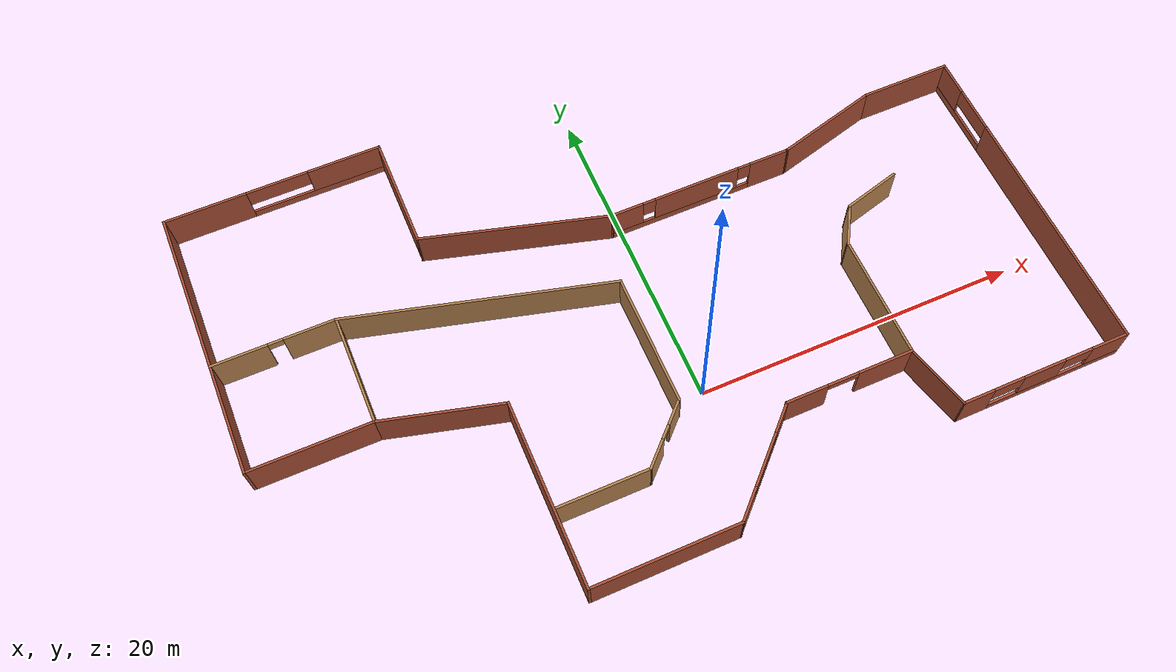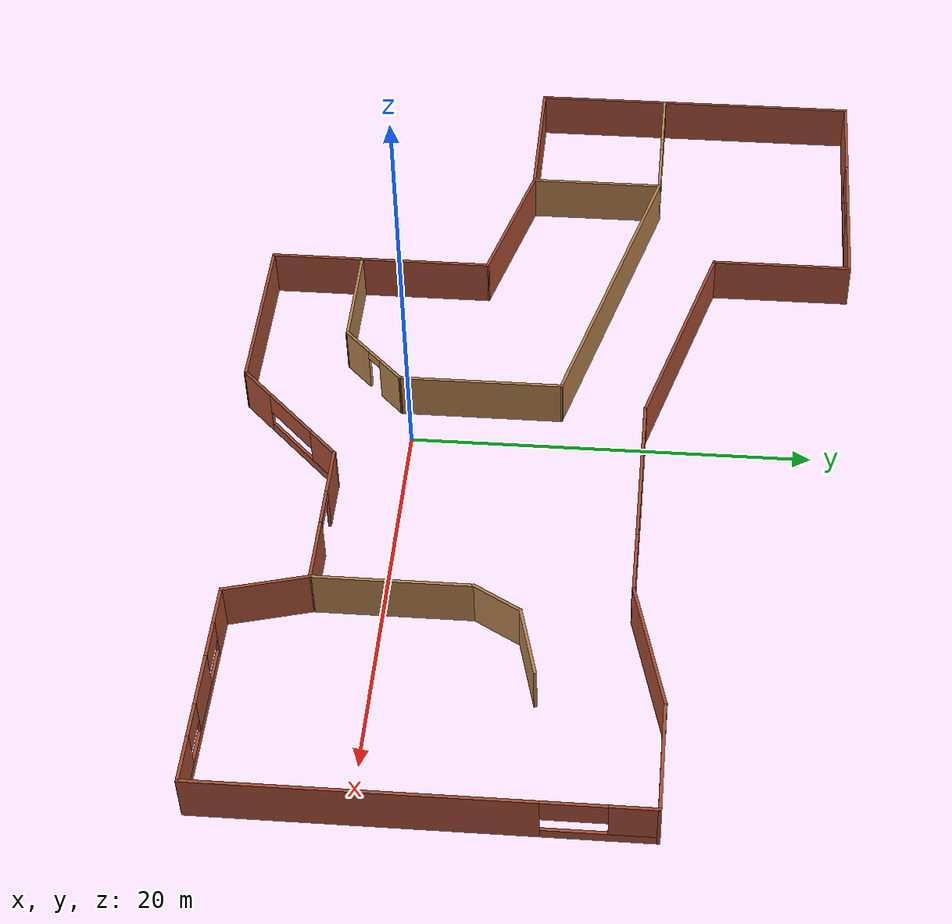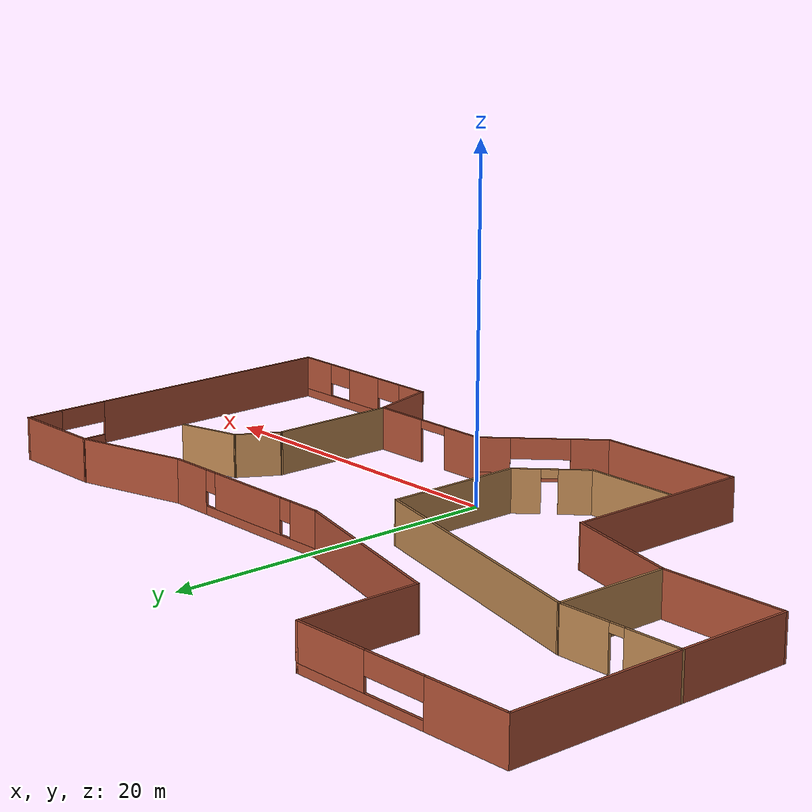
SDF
<?xml version='1.0'?>
<sdf version='1.6'>
  <model name='apartment_1'>
    <pose frame=''>-1.007 6.69548 0 0 -0 0</pose>
    <link name='Wall_0'>
      <collision name='Wall_0_Collision'>
        <geometry>
          <box>
            <size>11.5 0.15 2.5</size>
          </box>
        </geometry>
        <pose frame=''>0 0 1.25 0 -0 0</pose>
      </collision>
      <visual name='Wall_0_Visual'>
        <pose frame=''>0 0 1.25 0 -0 0</pose>
        <geometry>
          <box>
            <size>11.5 0.15 2.5</size>
          </box>
        </geometry>
        <material>
          <script>
            <uri>file://media/materials/scripts/gazebo.material</uri>
            <name>Gazebo/Bricks</name>
          </script>
          <ambient>1 1 1 1</ambient>
        </material>
        <meta>
          <layer>0</layer>
        </meta>
      </visual>
      <pose frame=''>-9.55442 -9.48563 0 0 -0 -1.5708</pose>
    </link>
    <link name='Wall_1'>
      <collision name='Wall_1_Collision'>
        <geometry>
          <box>
            <size>9 0.15 2.5</size>
          </box>
        </geometry>
        <pose frame=''>0 0 1.25 0 -0 0</pose>
      </collision>
      <visual name='Wall_1_Visual'>
        <pose frame=''>0 0 1.25 0 -0 0</pose>
        <geometry>
          <box>
            <size>9 0.15 2.5</size>
          </box>
        </geometry>
        <material>
          <script>
            <uri>file://media/materials/scripts/gazebo.material</uri>
            <name>Gazebo/Bricks</name>
          </script>
          <ambient>1 1 1 1</ambient>
        </material>
        <meta>
          <layer>0</layer>
        </meta>
      </visual>
      <pose frame=''>-5.12942 -15.1606 0 0 -0 0</pose>
    </link>
    <link name='Wall_15'>
      <collision name='Wall_15_Collision'>
        <geometry>
          <box>
            <size>7.5 0.15 2.5</size>
          </box>
        </geometry>
        <pose frame=''>0 0 1.25 0 -0 0</pose>
      </collision>
      <visual name='Wall_15_Visual'>
        <pose frame=''>0 0 1.25 0 -0 0</pose>
        <geometry>
          <box>
            <size>7.5 0.15 2.5</size>
          </box>
        </geometry>
        <material>
          <script>
            <uri>file://media/materials/scripts/gazebo.material</uri>
            <name>Gazebo/Bricks</name>
          </script>
          <ambient>1 1 1 1</ambient>
        </material>
        <meta>
          <layer>0</layer>
        </meta>
      </visual>
      <pose frame=''>-13.1042 -2.85947 0 0 -0 2.87979</pose>
    </link>
    <link name='Wall_16'>
      <collision name='Wall_16_Collision'>
        <geometry>
          <box>
            <size>7.5 0.15 2.5</size>
          </box>
        </geometry>
        <pose frame=''>0 0 1.25 0 -0 0</pose>
      </collision>
      <visual name='Wall_16_Visual'>
        <pose frame=''>0 0 1.25 0 -0 0</pose>
        <geometry>
          <box>
            <size>7.5 0.15 2.5</size>
          </box>
        </geometry>
        <material>
          <script>
            <uri>file://media/materials/scripts/gazebo.material</uri>
            <name>Gazebo/Bricks</name>
          </script>
          <ambient>1 1 1 1</ambient>
        </material>
        <meta>
          <layer>0</layer>
        </meta>
      </visual>
      <pose frame=''>-20.329 -1.90831 0 0 -0 3.14159</pose>
    </link>
    <link name='Wall_17'>
      <collision name='Wall_17_Collision'>
        <geometry>
          <box>
            <size>17.25 0.15 2.5</size>
          </box>
        </geometry>
        <pose frame=''>0 0 1.25 0 -0 0</pose>
      </collision>
      <visual name='Wall_17_Visual'>
        <pose frame=''>0 0 1.25 0 -0 0</pose>
        <geometry>
          <box>
            <size>17.25 0.15 2.5</size>
          </box>
        </geometry>
        <material>
          <script>
            <uri>file://media/materials/scripts/gazebo.material</uri>
            <name>Gazebo/Bricks</name>
          </script>
          <ambient>1 1 1 1</ambient>
        </material>
        <meta>
          <layer>0</layer>
        </meta>
      </visual>
      <pose frame=''>-24.004 6.64169 0 0 -0 1.5708</pose>
    </link>
    <link name='Wall_18'>
      <pose frame=''>-17.329 15.1917 0 0 -0 0</pose>
      <visual name='Wall_18_Visual_0'>
        <pose frame=''>-4.20454 0 1.25 0 -0 0</pose>
        <geometry>
          <box>
            <size>5.09092 0.15 2.5</size>
          </box>
        </geometry>
        <material>
          <script>
            <uri>file://media/materials/scripts/gazebo.material</uri>
            <name>Gazebo/Bricks</name>
          </script>
          <ambient>1 1 1 1</ambient>
        </material>
        <meta>
          <layer>0</layer>
        </meta>
      </visual>
      <collision name='Wall_18_Collision_0'>
        <geometry>
          <box>
            <size>5.09092 0.15 2.5</size>
          </box>
        </geometry>
        <pose frame=''>-4.20454 0 1.25 0 -0 0</pose>
      </collision>
      <visual name='Wall_18_Visual_1'>
        <pose frame=''>2.54546 0 0.25 0 -0 0</pose>
        <geometry>
          <box>
            <size>8.40908 0.15 0.5</size>
          </box>
        </geometry>
        <material>
          <script>
            <uri>file://media/materials/scripts/gazebo.material</uri>
            <name>Gazebo/Bricks</name>
          </script>
          <ambient>1 1 1 1</ambient>
        </material>
        <meta>
          <layer>0</layer>
        </meta>
      </visual>
      <collision name='Wall_18_Collision_1'>
        <geometry>
          <box>
            <size>8.40908 0.15 0.5</size>
          </box>
        </geometry>
        <pose frame=''>2.54546 0 0.25 0 -0 0</pose>
      </collision>
      <visual name='Wall_18_Visual_2'>
        <pose frame=''>4.45082 0 1.5 0 -0 0</pose>
        <geometry>
          <box>
            <size>4.59837 0.15 2</size>
          </box>
        </geometry>
        <material>
          <script>
            <uri>file://media/materials/scripts/gazebo.material</uri>
            <name>Gazebo/Bricks</name>
          </script>
          <ambient>1 1 1 1</ambient>
        </material>
        <meta>
          <layer>0</layer>
        </meta>
      </visual>
      <collision name='Wall_18_Collision_2'>
        <geometry>
          <box>
            <size>4.59837 0.15 2</size>
          </box>
        </geometry>
        <pose frame=''>4.45082 0 1.5 0 -0 0</pose>
      </collision>
      <visual name='Wall_18_Visual_3'>
        <pose frame=''>0.246279 0 1.9 0 -0 0</pose>
        <geometry>
          <box>
            <size>3.81071 0.15 1.2</size>
          </box>
        </geometry>
        <material>
          <script>
            <uri>file://media/materials/scripts/gazebo.material</uri>
            <name>Gazebo/Bricks</name>
          </script>
          <ambient>1 1 1 1</ambient>
        </material>
        <meta>
          <layer>0</layer>
        </meta>
      </visual>
      <collision name='Wall_18_Collision_3'>
        <geometry>
          <box>
            <size>3.81071 0.15 1.2</size>
          </box>
        </geometry>
        <pose frame=''>0.246279 0 1.9 0 -0 0</pose>
      </collision>
    </link>
    <link name='Wall_19'>
      <collision name='Wall_19_Collision'>
        <geometry>
          <box>
            <size>7.25 0.15 2.5</size>
          </box>
        </geometry>
        <pose frame=''>0 0 1.25 0 -0 0</pose>
      </collision>
      <visual name='Wall_19_Visual'>
        <pose frame=''>0 0 1.25 0 -0 0</pose>
        <geometry>
          <box>
            <size>7.25 0.15 2.5</size>
          </box>
        </geometry>
        <material>
          <script>
            <uri>file://media/materials/scripts/gazebo.material</uri>
            <name>Gazebo/Bricks</name>
          </script>
          <ambient>1 1 1 1</ambient>
        </material>
        <meta>
          <layer>0</layer>
        </meta>
      </visual>
      <pose frame=''>-10.654 11.6417 0 0 -0 -1.5708</pose>
    </link>
    <link name='Wall_2'>
      <pose frame=''>1.8942 -12.562 0 0 -0 0.785398</pose>
      <visual name='Wall_2_Visual_0'>
        <pose frame=''>-2.6428 0 1.25 0 -0 0</pose>
        <geometry>
          <box>
            <size>2.21439 0.15 2.5</size>
          </box>
        </geometry>
        <material>
          <script>
            <uri>file://media/materials/scripts/gazebo.material</uri>
            <name>Gazebo/Bricks</name>
          </script>
          <ambient>1 1 1 1</ambient>
        </material>
        <meta>
          <layer>0</layer>
        </meta>
      </visual>
      <collision name='Wall_2_Collision_0'>
        <geometry>
          <box>
            <size>2.21439 0.15 2.5</size>
          </box>
        </geometry>
        <pose frame=''>-2.6428 0 1.25 0 -0 0</pose>
      </collision>
      <visual name='Wall_2_Visual_1'>
        <pose frame=''>1.1072 0 0.25 0 -0 0</pose>
        <geometry>
          <box>
            <size>5.28561 0.15 0.5</size>
          </box>
        </geometry>
        <material>
          <script>
            <uri>file://media/materials/scripts/gazebo.material</uri>
            <name>Gazebo/Bricks</name>
          </script>
          <ambient>1 1 1 1</ambient>
        </material>
        <meta>
          <layer>0</layer>
        </meta>
      </visual>
      <collision name='Wall_2_Collision_1'>
        <geometry>
          <box>
            <size>5.28561 0.15 0.5</size>
          </box>
        </geometry>
        <pose frame=''>1.1072 0 0.25 0 -0 0</pose>
      </collision>
      <visual name='Wall_2_Visual_2'>
        <pose frame=''>2.77299 0 1.5 0 -0 0</pose>
        <geometry>
          <box>
            <size>1.95401 0.15 2</size>
          </box>
        </geometry>
        <material>
          <script>
            <uri>file://media/materials/scripts/gazebo.material</uri>
            <name>Gazebo/Bricks</name>
          </script>
          <ambient>1 1 1 1</ambient>
        </material>
        <meta>
          <layer>0</layer>
        </meta>
      </visual>
      <collision name='Wall_2_Collision_2'>
        <geometry>
          <box>
            <size>1.95401 0.15 2</size>
          </box>
        </geometry>
        <pose frame=''>2.77299 0 1.5 0 -0 0</pose>
      </collision>
      <visual name='Wall_2_Visual_3'>
        <pose frame=''>0.130189 0 1.9 0 -0 0</pose>
        <geometry>
          <box>
            <size>3.3316 0.15 1.2</size>
          </box>
        </geometry>
        <material>
          <script>
            <uri>file://media/materials/scripts/gazebo.material</uri>
            <name>Gazebo/Bricks</name>
          </script>
          <ambient>1 1 1 1</ambient>
        </material>
        <meta>
          <layer>0</layer>
        </meta>
      </visual>
      <collision name='Wall_2_Collision_3'>
        <geometry>
          <box>
            <size>3.3316 0.15 1.2</size>
          </box>
        </geometry>
        <pose frame=''>0.130189 0 1.9 0 -0 0</pose>
      </collision>
    </link>
    <link name='Wall_20'>
      <collision name='Wall_20_Collision'>
        <geometry>
          <box>
            <size>11.6646 0.15 2.5</size>
          </box>
        </geometry>
        <pose frame=''>0 0 1.25 0 -0 0</pose>
      </collision>
      <visual name='Wall_20_Visual'>
        <pose frame=''>0 0 1.25 0 -0 0</pose>
        <geometry>
          <box>
            <size>11.6646 0.15 2.5</size>
          </box>
        </geometry>
        <material>
          <script>
            <uri>file://media/materials/scripts/gazebo.material</uri>
            <name>Gazebo/Bricks</name>
          </script>
          <ambient>1 1 1 1</ambient>
        </material>
        <meta>
          <layer>0</layer>
        </meta>
      </visual>
      <pose frame=''>-5.11256 6.5299 0 0 -0 -0.274714</pose>
    </link>
    <link name='Wall_22'>
      <collision name='Wall_22_Collision'>
        <geometry>
          <box>
            <size>7.75 0.15 2.5</size>
          </box>
        </geometry>
        <pose frame=''>0 0 1.25 0 -0 0</pose>
      </collision>
      <visual name='Wall_22_Visual'>
        <pose frame=''>0 0 1.25 0 -0 0</pose>
        <geometry>
          <box>
            <size>7.75 0.15 2.5</size>
          </box>
        </geometry>
        <material>
          <script>
            <uri>file://media/materials/scripts/gazebo.material</uri>
            <name>Gazebo/Wood</name>
          </script>
          <ambient>1 1 1 1</ambient>
        </material>
        <meta>
          <layer>0</layer>
        </meta>
      </visual>
      <pose frame=''>12.3428 -6.16339 0 0 -0 1.5708</pose>
    </link>
    <link name='Wall_3'>
      <pose frame=''>8.41782 -9.96339 0 0 -0 0</pose>
      <visual name='Wall_3_Visual_0'>
        <pose frame=''>-2.68299 0 1.25 0 -0 0</pose>
        <geometry>
          <box>
            <size>2.63402 0.15 2.5</size>
          </box>
        </geometry>
        <material>
          <script>
            <uri>file://media/materials/scripts/gazebo.material</uri>
            <name>Gazebo/Bricks</name>
          </script>
          <ambient>1 1 1 1</ambient>
        </material>
        <meta>
          <layer>0</layer>
        </meta>
      </visual>
      <collision name='Wall_3_Collision_0'>
        <geometry>
          <box>
            <size>2.63402 0.15 2.5</size>
          </box>
        </geometry>
        <pose frame=''>-2.68299 0 1.25 0 -0 0</pose>
      </collision>
      <visual name='Wall_3_Visual_1'>
        <pose frame=''>2.27617 0 1.25 0 -0 0</pose>
        <geometry>
          <box>
            <size>3.44766 0.15 2.5</size>
          </box>
        </geometry>
        <material>
          <script>
            <uri>file://media/materials/scripts/gazebo.material</uri>
            <name>Gazebo/Bricks</name>
          </script>
          <ambient>1 1 1 1</ambient>
        </material>
        <meta>
          <layer>0</layer>
        </meta>
      </visual>
      <collision name='Wall_3_Collision_1'>
        <geometry>
          <box>
            <size>3.44766 0.15 2.5</size>
          </box>
        </geometry>
        <pose frame=''>2.27617 0 1.25 0 -0 0</pose>
      </collision>
      <visual name='Wall_3_Visual_2'>
        <pose frame=''>-0.406822 0 2.25 0 -0 0</pose>
        <geometry>
          <box>
            <size>1.91833 0.15 0.5</size>
          </box>
        </geometry>
        <material>
          <script>
            <uri>file://media/materials/scripts/gazebo.material</uri>
            <name>Gazebo/Bricks</name>
          </script>
          <ambient>1 1 1 1</ambient>
        </material>
        <meta>
          <layer>0</layer>
        </meta>
      </visual>
      <collision name='Wall_3_Collision_2'>
        <geometry>
          <box>
            <size>1.91833 0.15 0.5</size>
          </box>
        </geometry>
        <pose frame=''>-0.406822 0 2.25 0 -0 0</pose>
      </collision>
    </link>
    <link name='Wall_31'>
      <collision name='Wall_31_Collision'>
        <geometry>
          <box>
            <size>7 0.15 2.5</size>
          </box>
        </geometry>
        <pose frame=''>0 0 1.25 0 -0 0</pose>
      </collision>
      <visual name='Wall_31_Visual'>
        <pose frame=''>0 0 1.25 0 -0 0</pose>
        <geometry>
          <box>
            <size>7 0.15 2.5</size>
          </box>
        </geometry>
        <material>
          <script>
            <uri>file://media/materials/scripts/gazebo.material</uri>
            <name>Gazebo/Wood</name>
          </script>
          <ambient>1 1 1 1</ambient>
        </material>
        <meta>
          <layer>0</layer>
        </meta>
      </visual>
      <pose frame=''>-16.654 1.51669 0 0 -0 1.5708</pose>
    </link>
    <link name='Wall_32'>
      <collision name='Wall_32_Collision'>
        <geometry>
          <box>
            <size>16.5 0.15 2.5</size>
          </box>
        </geometry>
        <pose frame=''>0 0 1.25 0 -0 0</pose>
      </collision>
      <visual name='Wall_32_Visual'>
        <pose frame=''>0 0 1.25 0 -0 0</pose>
        <geometry>
          <box>
            <size>16.5 0.15 2.5</size>
          </box>
        </geometry>
        <material>
          <script>
            <uri>file://media/materials/scripts/gazebo.material</uri>
            <name>Gazebo/Wood</name>
          </script>
          <ambient>1 1 1 1</ambient>
        </material>
        <meta>
          <layer>0</layer>
        </meta>
      </visual>
      <pose frame=''>-8.75753 2.82585 0 0 -0 -0.261799</pose>
    </link>
    <link name='Wall_33'>
      <collision name='Wall_33_Collision'>
        <geometry>
          <box>
            <size>8.25 0.15 2.5</size>
          </box>
        </geometry>
        <pose frame=''>0 0 1.25 0 -0 0</pose>
      </collision>
      <visual name='Wall_33_Visual'>
        <pose frame=''>0 0 1.25 0 -0 0</pose>
        <geometry>
          <box>
            <size>8.25 0.15 2.5</size>
          </box>
        </geometry>
        <material>
          <script>
            <uri>file://media/materials/scripts/gazebo.material</uri>
            <name>Gazebo/Wood</name>
          </script>
          <ambient>1 1 1 1</ambient>
        </material>
        <meta>
          <layer>0</layer>
        </meta>
      </visual>
      <pose frame=''>-0.861087 -3.34 0 0 -0 -1.5708</pose>
    </link>
    <link name='Wall_34'>
      <pose frame=''>-2.39904 -8.92796 0 0 -0 -2.35619</pose>
      <visual name='Wall_34_Visual_0'>
        <pose frame=''>-1.40435 0 1.25 0 -0 0</pose>
        <geometry>
          <box>
            <size>1.6913 0.15 2.5</size>
          </box>
        </geometry>
        <material>
          <script>
            <uri>file://media/materials/scripts/gazebo.material</uri>
            <name>Gazebo/Wood</name>
          </script>
          <ambient>1 1 1 1</ambient>
        </material>
        <meta>
          <layer>0</layer>
        </meta>
      </visual>
      <collision name='Wall_34_Collision_0'>
        <geometry>
          <box>
            <size>1.6913 0.15 2.5</size>
          </box>
        </geometry>
        <pose frame=''>-1.40435 0 1.25 0 -0 0</pose>
      </collision>
      <visual name='Wall_34_Visual_1'>
        <pose frame=''>1.29565 0 1.25 0 -0 0</pose>
        <geometry>
          <box>
            <size>1.9087 0.15 2.5</size>
          </box>
        </geometry>
        <material>
          <script>
            <uri>file://media/materials/scripts/gazebo.material</uri>
            <name>Gazebo/Wood</name>
          </script>
          <ambient>1 1 1 1</ambient>
        </material>
        <meta>
          <layer>0</layer>
        </meta>
      </visual>
      <collision name='Wall_34_Collision_1'>
        <geometry>
          <box>
            <size>1.9087 0.15 2.5</size>
          </box>
        </geometry>
        <pose frame=''>1.29565 0 1.25 0 -0 0</pose>
      </collision>
      <visual name='Wall_34_Visual_2'>
        <pose frame=''>-0.108703 0 2.25 0 -0 0</pose>
        <geometry>
          <box>
            <size>0.9 0.15 0.5</size>
          </box>
        </geometry>
        <material>
          <script>
            <uri>file://media/materials/scripts/gazebo.material</uri>
            <name>Gazebo/Wood</name>
          </script>
          <ambient>1 1 1 1</ambient>
        </material>
        <meta>
          <layer>0</layer>
        </meta>
      </visual>
      <collision name='Wall_34_Collision_2'>
        <geometry>
          <box>
            <size>0.9 0.15 0.5</size>
          </box>
        </geometry>
        <pose frame=''>-0.108703 0 2.25 0 -0 0</pose>
      </collision>
    </link>
    <link name='Wall_35'>
      <collision name='Wall_35_Collision'>
        <geometry>
          <box>
            <size>5.75 0.15 2.5</size>
          </box>
        </geometry>
        <pose frame=''>0 0 1.25 0 -0 0</pose>
      </collision>
      <visual name='Wall_35_Visual'>
        <pose frame=''>0 0 1.25 0 -0 0</pose>
        <geometry>
          <box>
            <size>5.75 0.15 2.5</size>
          </box>
        </geometry>
        <material>
          <script>
            <uri>file://media/materials/scripts/gazebo.material</uri>
            <name>Gazebo/Wood</name>
          </script>
          <ambient>1 1 1 1</ambient>
        </material>
        <meta>
          <layer>0</layer>
        </meta>
      </visual>
      <pose frame=''>-6.737 -10.4659 0 0 -0 3.14159</pose>
    </link>
    <link name='Wall_4'>
      <collision name='Wall_4_Collision'>
        <geometry>
          <box>
            <size>4.25 0.15 2.5</size>
          </box>
        </geometry>
        <pose frame=''>0 0 1.25 0 -0 0</pose>
      </collision>
      <visual name='Wall_4_Visual'>
        <pose frame=''>0 0 1.25 0 -0 0</pose>
        <geometry>
          <box>
            <size>4.25 0.15 2.5</size>
          </box>
        </geometry>
        <material>
          <script>
            <uri>file://media/materials/scripts/gazebo.material</uri>
            <name>Gazebo/Bricks</name>
          </script>
          <ambient>1 1 1 1</ambient>
        </material>
        <meta>
          <layer>0</layer>
        </meta>
      </visual>
      <pose frame=''>12.8734 -11.9435 0 0 -0 -1.309</pose>
    </link>
    <link name='Wall_5'>
      <pose frame=''>18.704 -13.9237 0 0 -0 0</pose>
      <visual name='Wall_5_Visual_0'>
        <pose frame=''>-4.35791 0 1.25 0 -0 0</pose>
        <geometry>
          <box>
            <size>2.03418 0.15 2.5</size>
          </box>
        </geometry>
        <material>
          <script>
            <uri>file://media/materials/scripts/gazebo.material</uri>
            <name>Gazebo/Bricks</name>
          </script>
          <ambient>1 1 1 1</ambient>
        </material>
        <meta>
          <layer>0</layer>
        </meta>
      </visual>
      <collision name='Wall_5_Collision_0'>
        <geometry>
          <box>
            <size>2.03418 0.15 2.5</size>
          </box>
        </geometry>
        <pose frame=''>-4.35791 0 1.25 0 -0 0</pose>
      </collision>
      <visual name='Wall_5_Visual_1'>
        <pose frame=''>1.01709 0 0.25 0 -0 0</pose>
        <geometry>
          <box>
            <size>8.71582 0.15 0.5</size>
          </box>
        </geometry>
        <material>
          <script>
            <uri>file://media/materials/scripts/gazebo.material</uri>
            <name>Gazebo/Bricks</name>
          </script>
          <ambient>1 1 1 1</ambient>
        </material>
        <meta>
          <layer>0</layer>
        </meta>
      </visual>
      <collision name='Wall_5_Collision_1'>
        <geometry>
          <box>
            <size>8.71582 0.15 0.5</size>
          </box>
        </geometry>
        <pose frame=''>1.01709 0 0.25 0 -0 0</pose>
      </collision>
      <visual name='Wall_5_Visual_2'>
        <pose frame=''>-0.09576 0 1.5 0 -0 0</pose>
        <geometry>
          <box>
            <size>2.66959 0.15 2</size>
          </box>
        </geometry>
        <material>
          <script>
            <uri>file://media/materials/scripts/gazebo.material</uri>
            <name>Gazebo/Bricks</name>
          </script>
          <ambient>1 1 1 1</ambient>
        </material>
        <meta>
          <layer>0</layer>
        </meta>
      </visual>
      <collision name='Wall_5_Collision_2'>
        <geometry>
          <box>
            <size>2.66959 0.15 2</size>
          </box>
        </geometry>
        <pose frame=''>-0.09576 0 1.5 0 -0 0</pose>
      </collision>
      <visual name='Wall_5_Visual_3'>
        <pose frame=''>4.18119 0 1.5 0 -0 0</pose>
        <geometry>
          <box>
            <size>2.38761 0.15 2</size>
          </box>
        </geometry>
        <material>
          <script>
            <uri>file://media/materials/scripts/gazebo.material</uri>
            <name>Gazebo/Bricks</name>
          </script>
          <ambient>1 1 1 1</ambient>
        </material>
        <meta>
          <layer>0</layer>
        </meta>
      </visual>
      <collision name='Wall_5_Collision_3'>
        <geometry>
          <box>
            <size>2.38761 0.15 2</size>
          </box>
        </geometry>
        <pose frame=''>4.18119 0 1.5 0 -0 0</pose>
      </collision>
      <visual name='Wall_5_Visual_4'>
        <pose frame=''>-2.38569 0 1.9 0 -0 0</pose>
        <geometry>
          <box>
            <size>1.91027 0.15 1.2</size>
          </box>
        </geometry>
        <material>
          <script>
            <uri>file://media/materials/scripts/gazebo.material</uri>
            <name>Gazebo/Bricks</name>
          </script>
          <ambient>1 1 1 1</ambient>
        </material>
        <meta>
          <layer>0</layer>
        </meta>
      </visual>
      <collision name='Wall_5_Collision_4'>
        <geometry>
          <box>
            <size>1.91027 0.15 1.2</size>
          </box>
        </geometry>
        <pose frame=''>-2.38569 0 1.9 0 -0 0</pose>
      </collision>
      <visual name='Wall_5_Visual_5'>
        <pose frame=''>2.11321 0 1.9 0 -0 0</pose>
        <geometry>
          <box>
            <size>1.74836 0.15 1.2</size>
          </box>
        </geometry>
        <material>
          <script>
            <uri>file://media/materials/scripts/gazebo.material</uri>
            <name>Gazebo/Bricks</name>
          </script>
          <ambient>1 1 1 1</ambient>
        </material>
        <meta>
          <layer>0</layer>
        </meta>
      </visual>
      <collision name='Wall_5_Collision_5'>
        <geometry>
          <box>
            <size>1.74836 0.15 1.2</size>
          </box>
        </geometry>
        <pose frame=''>2.11321 0 1.9 0 -0 0</pose>
      </collision>
    </link>
    <link name='Wall_6'>
      <pose frame=''>24.004 -3.62369 0 0 -0 1.5708</pose>
      <visual name='Wall_6_Visual_0'>
        <pose frame=''>-2.59403 0 1.25 0 -0 0</pose>
        <geometry>
          <box>
            <size>15.5619 0.15 2.5</size>
          </box>
        </geometry>
        <material>
          <script>
            <uri>file://media/materials/scripts/gazebo.material</uri>
            <name>Gazebo/Bricks</name>
          </script>
          <ambient>1 1 1 1</ambient>
        </material>
        <meta>
          <layer>0</layer>
        </meta>
      </visual>
      <collision name='Wall_6_Collision_0'>
        <geometry>
          <box>
            <size>15.5619 0.15 2.5</size>
          </box>
        </geometry>
        <pose frame=''>-2.59403 0 1.25 0 -0 0</pose>
      </collision>
      <visual name='Wall_6_Visual_1'>
        <pose frame=''>7.78097 0 0.25 0 -0 0</pose>
        <geometry>
          <box>
            <size>5.18806 0.15 0.5</size>
          </box>
        </geometry>
        <material>
          <script>
            <uri>file://media/materials/scripts/gazebo.material</uri>
            <name>Gazebo/Bricks</name>
          </script>
          <ambient>1 1 1 1</ambient>
        </material>
        <meta>
          <layer>0</layer>
        </meta>
      </visual>
      <collision name='Wall_6_Collision_1'>
        <geometry>
          <box>
            <size>5.18806 0.15 0.5</size>
          </box>
        </geometry>
        <pose frame=''>7.78097 0 0.25 0 -0 0</pose>
      </collision>
      <visual name='Wall_6_Visual_2'>
        <pose frame=''>9.25102 0 1.5 0 -0 0</pose>
        <geometry>
          <box>
            <size>2.24796 0.15 2</size>
          </box>
        </geometry>
        <material>
          <script>
            <uri>file://media/materials/scripts/gazebo.material</uri>
            <name>Gazebo/Bricks</name>
          </script>
          <ambient>1 1 1 1</ambient>
        </material>
        <meta>
          <layer>0</layer>
        </meta>
      </visual>
      <collision name='Wall_6_Collision_2'>
        <geometry>
          <box>
            <size>2.24796 0.15 2</size>
          </box>
        </geometry>
        <pose frame=''>9.25102 0 1.5 0 -0 0</pose>
      </collision>
      <visual name='Wall_6_Visual_3'>
        <pose frame=''>6.65699 0 1.9 0 -0 0</pose>
        <geometry>
          <box>
            <size>2.9401 0.15 1.2</size>
          </box>
        </geometry>
        <material>
          <script>
            <uri>file://media/materials/scripts/gazebo.material</uri>
            <name>Gazebo/Bricks</name>
          </script>
          <ambient>1 1 1 1</ambient>
        </material>
        <meta>
          <layer>0</layer>
        </meta>
      </visual>
      <collision name='Wall_6_Collision_3'>
        <geometry>
          <box>
            <size>2.9401 0.15 1.2</size>
          </box>
        </geometry>
        <pose frame=''>6.65699 0 1.9 0 -0 0</pose>
      </collision>
    </link>
    <link name='Wall_60'>
      <pose frame=''>-20.329 4.94169 0 0 -0 3.14159</pose>
      <visual name='Wall_60_Visual_0'>
        <pose frame=''>-2.14907 0 1.25 0 -0 0</pose>
        <geometry>
          <box>
            <size>3.20186 0.15 2.5</size>
          </box>
        </geometry>
        <material>
          <script>
            <uri>file://media/materials/scripts/gazebo.material</uri>
            <name>Gazebo/Wood</name>
          </script>
          <ambient>1 1 1 1</ambient>
        </material>
        <meta>
          <layer>0</layer>
        </meta>
      </visual>
      <collision name='Wall_60_Collision_0'>
        <geometry>
          <box>
            <size>3.20186 0.15 2.5</size>
          </box>
        </geometry>
        <pose frame=''>-2.14907 0 1.25 0 -0 0</pose>
      </collision>
      <visual name='Wall_60_Visual_1'>
        <pose frame=''>2.05093 0 1.25 0 -0 0</pose>
        <geometry>
          <box>
            <size>3.39814 0.15 2.5</size>
          </box>
        </geometry>
        <material>
          <script>
            <uri>file://media/materials/scripts/gazebo.material</uri>
            <name>Gazebo/Wood</name>
          </script>
          <ambient>1 1 1 1</ambient>
        </material>
        <meta>
          <layer>0</layer>
        </meta>
      </visual>
      <collision name='Wall_60_Collision_1'>
        <geometry>
          <box>
            <size>3.39814 0.15 2.5</size>
          </box>
        </geometry>
        <pose frame=''>2.05093 0 1.25 0 -0 0</pose>
      </collision>
      <visual name='Wall_60_Visual_2'>
        <pose frame=''>-0.098143 0 2.25 0 -0 0</pose>
        <geometry>
          <box>
            <size>0.9 0.15 0.5</size>
          </box>
        </geometry>
        <material>
          <script>
            <uri>file://media/materials/scripts/gazebo.material</uri>
            <name>Gazebo/Wood</name>
          </script>
          <ambient>1 1 1 1</ambient>
        </material>
        <meta>
          <layer>0</layer>
        </meta>
      </visual>
      <collision name='Wall_60_Collision_2'>
        <geometry>
          <box>
            <size>0.9 0.15 0.5</size>
          </box>
        </geometry>
        <pose frame=''>-0.098143 0 2.25 0 -0 0</pose>
      </collision>
    </link>
    <link name='Wall_65'>
      <collision name='Wall_65_Collision'>
        <geometry>
          <box>
            <size>2.75 0.15 2.5</size>
          </box>
        </geometry>
        <pose frame=''>0 0 1.25 0 -0 0</pose>
      </collision>
      <visual name='Wall_65_Visual'>
        <pose frame=''>0 0 1.25 0 -0 0</pose>
        <geometry>
          <box>
            <size>2.75 0.15 2.5</size>
          </box>
        </geometry>
        <material>
          <script>
            <uri>file://media/materials/scripts/gazebo.material</uri>
            <name>Gazebo/Wood</name>
          </script>
          <ambient>1 1 1 1</ambient>
        </material>
        <meta>
          <layer>0</layer>
        </meta>
      </visual>
      <pose frame=''>12.9928 -1.23756 0 0 -0 1.0472</pose>
    </link>
    <link name='Wall_66'>
      <collision name='Wall_66_Collision'>
        <geometry>
          <box>
            <size>3.75 0.15 2.5</size>
          </box>
        </geometry>
        <pose frame=''>0 0 1.25 0 -0 0</pose>
      </collision>
      <visual name='Wall_66_Visual'>
        <pose frame=''>0 0 1.25 0 -0 0</pose>
        <geometry>
          <box>
            <size>3.75 0.15 2.5</size>
          </box>
        </geometry>
        <material>
          <script>
            <uri>file://media/materials/scripts/gazebo.material</uri>
            <name>Gazebo/Wood</name>
          </script>
          <ambient>1 1 1 1</ambient>
        </material>
        <meta>
          <layer>0</layer>
        </meta>
      </visual>
      <pose frame=''>15.3815 0.354148 0 0 -0 0.261799</pose>
    </link>
    <link name='Wall_7'>
      <collision name='Wall_7_Collision'>
        <geometry>
          <box>
            <size>5.75 0.15 2.5</size>
          </box>
        </geometry>
        <pose frame=''>0 0 1.25 0 -0 0</pose>
      </collision>
      <visual name='Wall_7_Visual'>
        <pose frame=''>0 0 1.25 0 -0 0</pose>
        <geometry>
          <box>
            <size>5.75 0.15 2.5</size>
          </box>
        </geometry>
        <material>
          <script>
            <uri>file://media/materials/scripts/gazebo.material</uri>
            <name>Gazebo/Bricks</name>
          </script>
          <ambient>1 1 1 1</ambient>
        </material>
        <meta>
          <layer>0</layer>
        </meta>
      </visual>
      <pose frame=''>21.204 6.67631 0 0 -0 3.14159</pose>
    </link>
    <link name='Wall_8'>
      <collision name='Wall_8_Collision'>
        <geometry>
          <box>
            <size>6.75 0.15 2.5</size>
          </box>
        </geometry>
        <pose frame=''>0 0 1.25 0 -0 0</pose>
      </collision>
      <visual name='Wall_8_Visual'>
        <pose frame=''>0 0 1.25 0 -0 0</pose>
        <geometry>
          <box>
            <size>6.75 0.15 2.5</size>
          </box>
        </geometry>
        <material>
          <script>
            <uri>file://media/materials/scripts/gazebo.material</uri>
            <name>Gazebo/Bricks</name>
          </script>
          <ambient>1 1 1 1</ambient>
        </material>
        <meta>
          <layer>0</layer>
        </meta>
      </visual>
      <pose frame=''>15.2164 5.82221 0 0 -0 -2.87979</pose>
    </link>
    <link name='Wall_9'>
      <pose frame=''>6.22886 4.96811 0 0 -0 3.14159</pose>
      <visual name='Wall_9_Visual_0'>
        <pose frame=''>-4.5743 0 1.25 0 -0 0</pose>
        <geometry>
          <box>
            <size>2.6014 0.15 2.5</size>
          </box>
        </geometry>
        <material>
          <script>
            <uri>file://media/materials/scripts/gazebo.material</uri>
            <name>Gazebo/Bricks</name>
          </script>
          <ambient>1 1 1 1</ambient>
        </material>
        <meta>
          <layer>0</layer>
        </meta>
      </visual>
      <collision name='Wall_9_Collision_0'>
        <geometry>
          <box>
            <size>2.6014 0.15 2.5</size>
          </box>
        </geometry>
        <pose frame=''>-4.5743 0 1.25 0 -0 0</pose>
      </collision>
      <visual name='Wall_9_Visual_1'>
        <pose frame=''>1.3007 0 0.25 0 -0 0</pose>
        <geometry>
          <box>
            <size>9.1486 0.15 0.5</size>
          </box>
        </geometry>
        <material>
          <script>
            <uri>file://media/materials/scripts/gazebo.material</uri>
            <name>Gazebo/Bricks</name>
          </script>
          <ambient>1 1 1 1</ambient>
        </material>
        <meta>
          <layer>0</layer>
        </meta>
      </visual>
      <collision name='Wall_9_Collision_1'>
        <geometry>
          <box>
            <size>9.1486 0.15 0.5</size>
          </box>
        </geometry>
        <pose frame=''>1.3007 0 0.25 0 -0 0</pose>
      </collision>
      <visual name='Wall_9_Visual_2'>
        <pose frame=''>0.256292 0 1.5 0 -0 0</pose>
        <geometry>
          <box>
            <size>5.45979 0.15 2</size>
          </box>
        </geometry>
        <material>
          <script>
            <uri>file://media/materials/scripts/gazebo.material</uri>
            <name>Gazebo/Bricks</name>
          </script>
          <ambient>1 1 1 1</ambient>
        </material>
        <meta>
          <layer>0</layer>
        </meta>
      </visual>
      <collision name='Wall_9_Collision_2'>
        <geometry>
          <box>
            <size>5.45979 0.15 2</size>
          </box>
        </geometry>
        <pose frame=''>0.256292 0 1.5 0 -0 0</pose>
      </collision>
      <visual name='Wall_9_Visual_3'>
        <pose frame=''>4.83059 0 1.5 0 -0 0</pose>
        <geometry>
          <box>
            <size>2.08881 0.15 2</size>
          </box>
        </geometry>
        <material>
          <script>
            <uri>file://media/materials/scripts/gazebo.material</uri>
            <name>Gazebo/Bricks</name>
          </script>
          <ambient>1 1 1 1</ambient>
        </material>
        <meta>
          <layer>0</layer>
        </meta>
      </visual>
      <collision name='Wall_9_Collision_3'>
        <geometry>
          <box>
            <size>2.08881 0.15 2</size>
          </box>
        </geometry>
        <pose frame=''>4.83059 0 1.5 0 -0 0</pose>
      </collision>
      <visual name='Wall_9_Visual_4'>
        <pose frame=''>-2.8736 0 1.9 0 -0 0</pose>
        <geometry>
          <box>
            <size>0.8 0.15 1.2</size>
          </box>
        </geometry>
        <material>
          <script>
            <uri>file://media/materials/scripts/gazebo.material</uri>
            <name>Gazebo/Bricks</name>
          </script>
          <ambient>1 1 1 1</ambient>
        </material>
        <meta>
          <layer>0</layer>
        </meta>
      </visual>
      <collision name='Wall_9_Collision_4'>
        <geometry>
          <box>
            <size>0.8 0.15 1.2</size>
          </box>
        </geometry>
        <pose frame=''>-2.8736 0 1.9 0 -0 0</pose>
      </collision>
      <visual name='Wall_9_Visual_5'>
        <pose frame=''>3.38619 0 1.9 0 -0 0</pose>
        <geometry>
          <box>
            <size>0.8 0.15 1.2</size>
          </box>
        </geometry>
        <material>
          <script>
            <uri>file://media/materials/scripts/gazebo.material</uri>
            <name>Gazebo/Bricks</name>
          </script>
          <ambient>1 1 1 1</ambient>
        </material>
        <meta>
          <layer>0</layer>
        </meta>
      </visual>
      <collision name='Wall_9_Collision_5'>
        <geometry>
          <box>
            <size>0.8 0.15 1.2</size>
          </box>
        </geometry>
        <pose frame=''>3.38619 0 1.9 0 -0 0</pose>
      </collision>
    </link>
    <static>1</static>
  </model>
</sdf>
